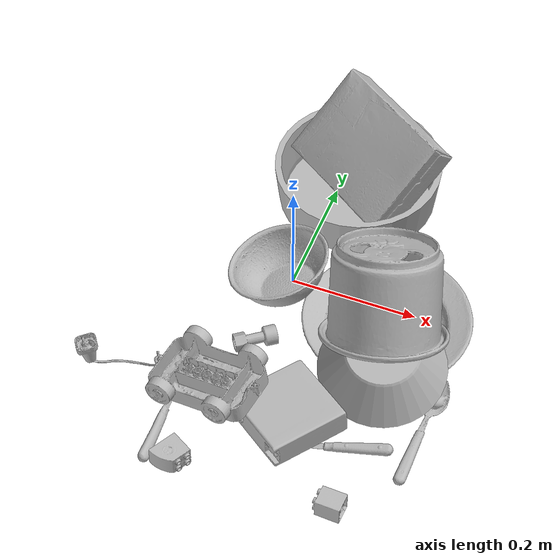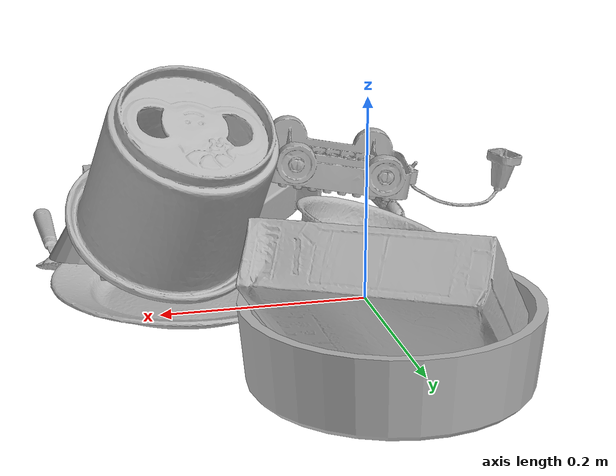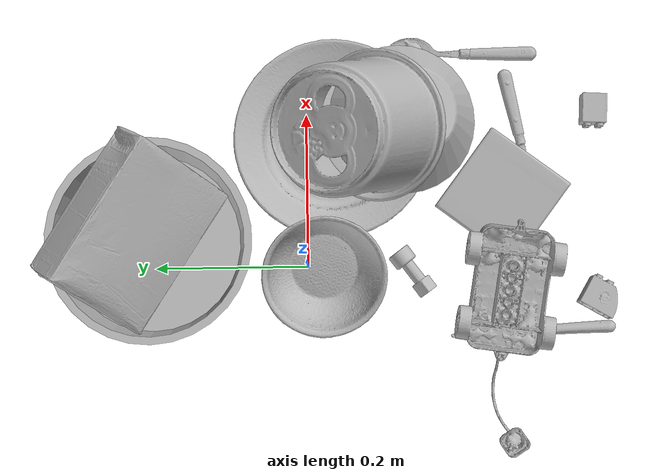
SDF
<sdf version="1.4">
  <world name="default">
    <light name="light1" type="point">
      <pose>0 0 1 0 0 0</pose>
      <diffuse>3 3 3 1</diffuse>
      <specular>3 3 3 1</specular>
    </light>
    <light name="light2" type="point">
      <pose>0 0.5 2 0 0 0</pose>
      <diffuse>1 1 1 1</diffuse>
      <specular>1 1 1 1</specular>
    </light>
    <light name="light3" type="point">
      <pose>0 0.5 2 0 0 0</pose>
      <diffuse>3 3 3 1</diffuse>
      <specular>3 3 3 1</specular>
    </light>
    <scene>
      <ambient>0.7 0.7 0.7</ambient>
    </scene>
    <model name="plate1">
      <link name="link_plate1">
        <collision name="default">
          <geometry>
            <mesh>
              <uri>model://plate/collision_meshes/collision.obj</uri>
              <scale>1.0 1.0 1.0</scale>
            </mesh>
          </geometry>
          <surface>
            <friction>
              <ode>
                <mu>0.5</mu>
                <mu2>0.5</mu2>
              </ode>
            </friction>
          <contact>
        <ode>
            <max_vel>0</max_vel>
            <min_depth>0.0001</min_depth>
            <kp>1e8</kp>
        </ode>
    </contact></surface>
        </collision>
        <visual name="default">
          <geometry>
            <mesh>
              <uri>model://plate/visual_meshes/visual.dae</uri>
              <scale>1.0 1.0 1.0</scale>
            </mesh>
          </geometry>
        </visual>
        <inertial>
          <mass>0.2518167495727539</mass>
          <pose>-0.000604460306931287 0.0002782583760563284 -0.001056198962032795 0.0022187362427659595 -0.003225514577586686 0.4526257716004426</pose>
          <inertia>
            <ixx>0.0011780038</ixx>
            <iyy>0.001166737</iyy>
            <izz>0.0023039998</izz>
            <ixy>0</ixy>
            <ixz>0</ixz>
            <iyz>0</iyz>
          </inertia>
        </inertial>
      </link>
      <pose>0.16642174124717712 -0.03494030609726906 0.01373322680592537 -8.700504679881199e-06 -1.4354868367372241e-05 1.6067159024891842</pose>
    </model>
    <model name="plate2">
      <link name="link_plate2">
        <collision name="default">
          <geometry>
            <mesh>
              <uri>model://pan_tefal/collision_meshes/collision.obj</uri>
              <scale>1.0 1.0 1.0</scale>
            </mesh>
          </geometry>
          <surface>
            <friction>
              <ode>
                <mu>0.5</mu>
                <mu2>0.5</mu2>
              </ode>
            </friction>
          <contact>
        <ode>
            <max_vel>0</max_vel>
            <min_depth>0.0001</min_depth>
            <kp>1e8</kp>
        </ode>
    </contact></surface>
        </collision>
        <visual name="default">
          <geometry>
            <mesh>
              <uri>model://pan_tefal/visual_meshes/visual.dae</uri>
              <scale>1.0 1.0 1.0</scale>
            </mesh>
          </geometry>
        </visual>
        <inertial>
          <mass>1.062379002571106</mass>
          <pose>-0.00018001841090153903 3.2791107514640316e-05 -0.008514937944710255 0.0008190335190592257 -0.00033013878845789875 -0.3318630487039029</pose>
          <inertia>
            <ixx>0.0073335525</ixx>
            <iyy>0.007380832</iyy>
            <izz>0.013499655</izz>
            <ixy>0</ixy>
            <ixz>0</ixz>
            <iyz>0</iyz>
          </inertia>
        </inertial>
      </link>
      <pose>0.03328857570886612 0.2027512490749359 0.038050033152103424 -3.942902992975135e-07 -1.5390935558318264e-06 1.2748417235315963</pose>
    </model>
    <model name="bowl1">
      <link name="link_bowl1">
        <collision name="default">
          <geometry>
            <mesh>
              <uri>model://bowl/collision_meshes/collision.obj</uri>
              <scale>1.0 1.0 1.0</scale>
            </mesh>
          </geometry>
          <surface>
            <friction>
              <ode>
                <mu>0.5</mu>
                <mu2>0.5</mu2>
              </ode>
            </friction>
          <contact>
        <ode>
            <max_vel>0</max_vel>
            <min_depth>0.0001</min_depth>
            <kp>1e8</kp>
        </ode>
    </contact></surface>
        </collision>
        <visual name="default">
          <geometry>
            <mesh>
              <uri>model://bowl/visual_meshes/visual.dae</uri>
              <scale>1.0 1.0 1.0</scale>
            </mesh>
          </geometry>
        </visual>
        <inertial>
          <mass>0.06917417049407959</mass>
          <pose>0.00020445069822017103 -0.0010302119189873338 -0.0008042645640671253 -0.015764106225313407 0.014546789960746879 0.7140402093907182</pose>
          <inertia>
            <ixx>0.00015889853</ixx>
            <iyy>0.00015534814</iyy>
            <izz>0.000267322</izz>
            <ixy>0</ixy>
            <ixz>0</ixz>
            <iyz>0</iyz>
          </inertia>
        </inertial>
      </link>
      <pose>-0.008952265605330467 -0.020870542153716087 0.03983753174543381 0.3149519150720642 -0.0037246927914251237 -1.5479811700703667</pose>
    </model>
    <model name="bowl2">
      <link name="link_bowl2">
        <collision name="default">
          <geometry>
            <mesh>
              <uri>model://bowl_a/collision_meshes/collision.obj</uri>
              <scale>1.0 1.0 1.0</scale>
            </mesh>
          </geometry>
          <surface>
            <friction>
              <ode>
                <mu>0.5</mu>
                <mu2>0.5</mu2>
              </ode>
            </friction>
          <contact>
        <ode>
            <max_vel>0</max_vel>
            <min_depth>0.0001</min_depth>
            <kp>1e8</kp>
        </ode>
    </contact></surface>
        </collision>
        <visual name="default">
          <geometry>
            <mesh>
              <uri>model://bowl_a/visual_meshes/visual.dae</uri>
              <scale>1.0 1.0 1.0</scale>
            </mesh>
          </geometry>
        </visual>
        <inertial>
          <mass>0.33581992983818054</mass>
          <pose>0.00027867587050423026 4.7312365495599806e-05 -0.0013765293406322598 -0.0009805275277335347 -0.0010938264345752996 -0.19124334191203107</pose>
          <inertia>
            <ixx>0.00095609494</ixx>
            <iyy>0.0009619646</iyy>
            <izz>0.0017004515</izz>
            <ixy>0</ixy>
            <ixz>0</ixz>
            <iyz>0</iyz>
          </inertia>
        </inertial>
      </link>
      <pose>0.1921788603067398 -0.13200923800468445 0.05435391142964363 3.0708712980743247 -0.2067669113320824 2.1563401763166143</pose>
    </model>
    <model name="silverware1">
      <link name="link_silverware1">
        <collision name="default">
          <geometry>
            <mesh>
              <uri>model://spoon/collision_meshes/collision.obj</uri>
              <scale>1.0 1.0 1.0</scale>
            </mesh>
          </geometry>
          <surface>
            <friction>
              <ode>
                <mu>0.5</mu>
                <mu2>0.5</mu2>
              </ode>
            </friction>
          <contact>
        <ode>
            <max_vel>0</max_vel>
            <min_depth>0.0001</min_depth>
            <kp>1e8</kp>
        </ode>
    </contact></surface>
        </collision>
        <visual name="default">
          <geometry>
            <mesh>
              <uri>model://spoon/visual_meshes/visual.dae</uri>
              <scale>1.0 1.0 1.0</scale>
            </mesh>
          </geometry>
        </visual>
        <inertial>
          <mass>0.02635110728442669</mass>
          <pose>-0.005526317283511162 -0.0016034177970141172 -0.0007271651993505657 0.03521639754710896 -0.03906583271405073 0.0061506130160543454</pose>
          <inertia>
            <ixx>1.4656912e-06</ixx>
            <iyy>0.0001002651</iyy>
            <izz>0.00010098792</izz>
            <ixy>0</ixy>
            <ixz>0</ixz>
            <iyz>0</iyz>
          </inertia>
        </inertial>
      </link>
      <pose>0.2760334312915802 -0.20504701137542725 0.008384497836232185 0.0030140016905797515 0.026866889518752633 1.5528835121028663</pose>
    </model>
    <model name="box1">
      <link name="link_box1">
        <collision name="default">
          <geometry>
            <mesh>
              <uri>model://cracker_box/collision_meshes/collision.obj</uri>
              <scale>1.0 1.0 1.0</scale>
            </mesh>
          </geometry>
          <surface>
            <friction>
              <ode>
                <mu>0.5</mu>
                <mu2>0.5</mu2>
              </ode>
            </friction>
          <contact>
        <ode>
            <max_vel>0</max_vel>
            <min_depth>0.0001</min_depth>
            <kp>1e8</kp>
        </ode>
    </contact></surface>
        </collision>
        <visual name="default">
          <geometry>
            <mesh>
              <uri>model://cracker_box/visual_meshes/visual.dae</uri>
              <scale>1.0 1.0 1.0</scale>
            </mesh>
          </geometry>
        </visual>
        <inertial>
          <mass>1.9942995309829712</mass>
          <pose>0.0009464178583584726 0.00025434247800149024 -0.0017029533628374338 -0.00031620747948387436 -0.011106490532043566 0.0025467943028284904</pose>
          <inertia>
            <ixx>0.005072607</ixx>
            <iyy>0.008375872</iyy>
            <izz>0.011953138</izz>
            <ixy>0</ixy>
            <ixz>0</ixz>
            <iyz>0</iyz>
          </inertia>
        </inertial>
      </link>
      <pose>0.04577898606657982 0.22561398148536682 0.08528176695108414 2.4096700377410922 -0.035988949844555196 2.5806564636063944</pose>
    </model>
    <model name="box2">
      <link name="link_box2">
        <collision name="default">
          <geometry>
            <mesh>
              <uri>model://pudding_box/collision_meshes/collision.obj</uri>
              <scale>1.0 1.0 1.0</scale>
            </mesh>
          </geometry>
          <surface>
            <friction>
              <ode>
                <mu>0.5</mu>
                <mu2>0.5</mu2>
              </ode>
            </friction>
          <contact>
        <ode>
            <max_vel>0</max_vel>
            <min_depth>0.0001</min_depth>
            <kp>1e8</kp>
        </ode>
    </contact></surface>
        </collision>
        <visual name="default">
          <geometry>
            <mesh>
              <uri>model://pudding_box/visual_meshes/visual.dae</uri>
              <scale>1.0 1.0 1.0</scale>
            </mesh>
          </geometry>
        </visual>
        <inertial>
          <mass>0.5201411247253418</mass>
          <pose>0.0004894821904599667 0.0008067885646596551 -0.0005188828217796981 0.00521310178321913 -0.006603799649863257 0.020079825157321304</pose>
          <inertia>
            <ixx>0.0005879929</ixx>
            <iyy>0.00039560578</iyy>
            <izz>0.00086832506</izz>
            <ixy>0</ixy>
            <ixz>0</ixz>
            <iyz>0</iyz>
          </inertia>
        </inertial>
      </link>
      <pose>0.18772834539413452 -0.10834913700819016 0.03577239066362381 3.049340554351922 0.24281069716045053 1.5369418659983611</pose>
    </model>
    <model name="cup1">
      <link name="link_cup1">
        <collision name="default">
          <geometry>
            <mesh>
              <uri>model://i_cups/collision_meshes/collision.obj</uri>
              <scale>2.0 2.0 2.0</scale>
            </mesh>
          </geometry>
          <surface>
            <friction>
              <ode>
                <mu>0.5</mu>
                <mu2>0.5</mu2>
              </ode>
            </friction>
          <contact>
        <ode>
            <max_vel>0</max_vel>
            <min_depth>0.0001</min_depth>
            <kp>1e8</kp>
        </ode>
    </contact></surface>
        </collision>
        <visual name="default">
          <geometry>
            <mesh>
              <uri>model://i_cups/visual_meshes/visual.dae</uri>
              <scale>2.0 2.0 2.0</scale>
            </mesh>
          </geometry>
        </visual>
        <inertial>
          <mass>0.946932315826416</mass>
          <pose>0.00022480011102743447 0.0003359477559570223 -0.0017158038681373 -0.02898277199923076 -0.03987335280003036 -0.34591530516328983</pose>
          <inertia>
            <ixx>0.005244167</ixx>
            <iyy>0.0052903723</iyy>
            <izz>0.005861205</izz>
            <ixy>0</ixy>
            <ixz>0</ixz>
            <iyz>0</iyz>
          </inertia>
        </inertial>
      </link>
      <pose>0.16842129826545715 -0.05750756710767746 0.11649688333272934 2.62301395356687 -0.014110961470281213 0.28625215136912524</pose>
    </model>
    <model name="silverware2">
      <link name="link_silverware2">
        <collision name="default">
          <geometry>
            <mesh>
              <uri>model://fork/collision_meshes/collision.obj</uri>
              <scale>1.0 1.0 1.0</scale>
            </mesh>
          </geometry>
          <surface>
            <friction>
              <ode>
                <mu>0.5</mu>
                <mu2>0.5</mu2>
              </ode>
            </friction>
          <contact>
        <ode>
            <max_vel>0</max_vel>
            <min_depth>0.0001</min_depth>
            <kp>1e8</kp>
        </ode>
    </contact></surface>
        </collision>
        <visual name="default">
          <geometry>
            <mesh>
              <uri>model://fork/visual_meshes/visual.dae</uri>
              <scale>1.0 1.0 1.0</scale>
            </mesh>
          </geometry>
        </visual>
        <inertial>
          <mass>0.03207480534911156</mass>
          <pose>-0.02957005240023136 0.00046588238910771906 0.0003218861820641905 -0.013551414501779666 -0.010977842682601763 0.014453906756127453</pose>
          <inertia>
            <ixx>1.1244033e-06</ixx>
            <iyy>8.373807e-05</iyy>
            <izz>8.424099e-05</izz>
            <ixy>0</ixy>
            <ixz>0</ixz>
            <iyz>0</iyz>
          </inertia>
        </inertial>
      </link>
      <pose>0.15843287110328674 -0.2806558907032013 0.009439091198146343 0.040890152191544196 0.11700969911213377 -2.9102982214529907</pose>
    </model>
    <model name="silverware3">
      <link name="link_silverware3">
        <collision name="default">
          <geometry>
            <mesh>
              <uri>model://knife/collision_meshes/collision.obj</uri>
              <scale>1.0 1.0 1.0</scale>
            </mesh>
          </geometry>
          <surface>
            <friction>
              <ode>
                <mu>0.5</mu>
                <mu2>0.5</mu2>
              </ode>
            </friction>
          <contact>
        <ode>
            <max_vel>0</max_vel>
            <min_depth>0.0001</min_depth>
            <kp>1e8</kp>
        </ode>
    </contact></surface>
        </collision>
        <visual name="default">
          <geometry>
            <mesh>
              <uri>model://knife/visual_meshes/visual.dae</uri>
              <scale>1.0 1.0 1.0</scale>
            </mesh>
          </geometry>
        </visual>
        <inertial>
          <mass>0.02260335348546505</mass>
          <pose>-0.023785259574651718 0.0015275129117071629 5.062025593360886e-05 0.073049853839256 0.017248417767033373 -0.0074098225522862896</pose>
          <inertia>
            <ixx>6.41575e-07</ixx>
            <iyy>8.6838445e-05</iyy>
            <izz>8.704508e-05</izz>
            <ixy>0</ixy>
            <ixz>0</ixz>
            <iyz>0</iyz>
          </inertia>
        </inertial>
      </link>
      <pose>-0.08892637491226196 -0.29264387488365173 0.009939795359969139 -2.1810506134530154 0.002426017144527111 1.6242865005913354</pose>
    </model>
    <model name="toy1">
      <link name="link_toy1">
        <collision name="default">
          <geometry>
            <mesh>
              <uri>model://nine_hole_peg_test/collision_meshes/collision.obj</uri>
              <scale>1.0 1.0 1.0</scale>
            </mesh>
          </geometry>
          <surface>
            <friction>
              <ode>
                <mu>0.5</mu>
                <mu2>0.5</mu2>
              </ode>
            </friction>
          <contact>
        <ode>
            <max_vel>0</max_vel>
            <min_depth>0.0001</min_depth>
            <kp>1e8</kp>
        </ode>
    </contact></surface>
        </collision>
        <visual name="default">
          <geometry>
            <mesh>
              <uri>model://nine_hole_peg_test/visual_meshes/visual.dae</uri>
              <scale>1.0 1.0 1.0</scale>
            </mesh>
          </geometry>
        </visual>
        <inertial>
          <mass>0.3368244469165802</mass>
          <pose>-0.0046173869632184505 -0.009647615253925323 2.6460689696250483e-05 -0.001466679946039042 0.000719417968587533 -0.6342416610336568</pose>
          <inertia>
            <ixx>0.00052668044</ixx>
            <iyy>0.000491756</iyy>
            <izz>0.00092289934</izz>
            <ixy>0</ixy>
            <ixz>0</ixz>
            <iyz>0</iyz>
          </inertia>
        </inertial>
      </link>
      <pose>0.0772726982831955 -0.25182127952575684 0.024917198345065117 -3.0562551968606293 -0.0006772452468747536 -2.215252191318578</pose>
    </model>
    <model name="toy2">
      <link name="link_toy2">
        <collision name="default">
          <geometry>
            <mesh>
              <uri>model://c_toy_airplane/collision_meshes/collision.obj</uri>
              <scale>1.0 1.0 1.0</scale>
            </mesh>
          </geometry>
          <surface>
            <friction>
              <ode>
                <mu>0.5</mu>
                <mu2>0.5</mu2>
              </ode>
            </friction>
          <contact>
        <ode>
            <max_vel>0</max_vel>
            <min_depth>0.0001</min_depth>
            <kp>1e8</kp>
        </ode>
    </contact></surface>
        </collision>
        <visual name="default">
          <geometry>
            <mesh>
              <uri>model://c_toy_airplane/visual_meshes/visual.dae</uri>
              <scale>1.0 1.0 1.0</scale>
            </mesh>
          </geometry>
        </visual>
        <inertial>
          <mass>0.025849465280771255</mass>
          <pose>-0.000230242803809233 -4.4294804979472246e-07 -0.006080531980842352 -0.006193997552816779 -0.016797268968147806 0.7655666586292194</pose>
          <inertia>
            <ixx>1.1869546e-05</ixx>
            <iyy>1.1836047e-05</iyy>
            <izz>2.7867347e-06</izz>
            <ixy>0</ixy>
            <ixz>0</ixz>
            <iyz>0</iyz>
          </inertia>
        </inertial>
      </link>
      <pose>-0.008874176070094109 -0.13690702617168427 0.015062765218317509 1.6347035136195416 1.2760164435922507 -0.865538760983143</pose>
    </model>
    <model name="toy3">
      <link name="link_toy3">
        <collision name="default">
          <geometry>
            <mesh>
              <uri>model://g_lego_duplo/collision_meshes/collision.obj</uri>
              <scale>1.0 1.0 1.0</scale>
            </mesh>
          </geometry>
          <surface>
            <friction>
              <ode>
                <mu>0.5</mu>
                <mu2>0.5</mu2>
              </ode>
            </friction>
          <contact>
        <ode>
            <max_vel>0</max_vel>
            <min_depth>0.0001</min_depth>
            <kp>1e8</kp>
        </ode>
    </contact></surface>
        </collision>
        <visual name="default">
          <geometry>
            <mesh>
              <uri>model://g_lego_duplo/visual_meshes/visual.dae</uri>
              <scale>1.0 1.0 1.0</scale>
            </mesh>
          </geometry>
        </visual>
        <inertial>
          <mass>0.44857048988342285</mass>
          <pose>-0.05004768818616867 0.0017554624937474728 0.0038806761149317026 0.010962989380518968 0.03810827633819491 -0.09653029550410545</pose>
          <inertia>
            <ixx>0.0006499838</ixx>
            <iyy>0.00196511</iyy>
            <izz>0.0024584262</izz>
            <ixy>0</ixy>
            <ixz>0</ixz>
            <iyz>0</iyz>
          </inertia>
        </inertial>
      </link>
      <pose>-0.09470020234584808 -0.2535509169101715 0.04733821749687195 3.132379408165892 0.17318318681582878 2.99725235856696</pose>
    </model>
    <model name="toy4">
      <link name="link_toy4">
        <collision name="default">
          <geometry>
            <mesh>
              <uri>model://b_lego_duplo/collision_meshes/collision.obj</uri>
              <scale>1.0 1.0 1.0</scale>
            </mesh>
          </geometry>
          <surface>
            <friction>
              <ode>
                <mu>0.5</mu>
                <mu2>0.5</mu2>
              </ode>
            </friction>
          <contact>
        <ode>
            <max_vel>0</max_vel>
            <min_depth>0.0001</min_depth>
            <kp>1e8</kp>
        </ode>
    </contact></surface>
        </collision>
        <visual name="default">
          <geometry>
            <mesh>
              <uri>model://b_lego_duplo/visual_meshes/visual.dae</uri>
              <scale>1.0 1.0 1.0</scale>
            </mesh>
          </geometry>
        </visual>
        <inertial>
          <mass>0.028142115101218224</mass>
          <pose>-0.00011053047637687996 -9.15253895072965e-06 0.0019294291269034147 -0.03749502345465157 -0.02635389323626884 0.4519044936865358</pose>
          <inertia>
            <ixx>5.759495e-06</ixx>
            <iyy>5.798213e-06</iyy>
            <izz>5.1315224e-06</izz>
            <ixy>0</ixy>
            <ixz>0</ixz>
            <iyz>0</iyz>
          </inertia>
        </inertial>
      </link>
      <pose>0.19871078431606293 -0.37576696276664734 0.016180505976080894 0.042571257130434186 -1.5623973996673661 -0.08714222661856501</pose>
    </model>
    <model name="toy5">
      <link name="link_toy5">
        <collision name="default">
          <geometry>
            <mesh>
              <uri>model://d_lego_duplo/collision_meshes/collision.obj</uri>
              <scale>1.0 1.0 1.0</scale>
            </mesh>
          </geometry>
          <surface>
            <friction>
              <ode>
                <mu>0.5</mu>
                <mu2>0.5</mu2>
              </ode>
            </friction>
          <contact>
        <ode>
            <max_vel>0</max_vel>
            <min_depth>0.0001</min_depth>
            <kp>1e8</kp>
        </ode>
    </contact></surface>
        </collision>
        <visual name="default">
          <geometry>
            <mesh>
              <uri>model://d_lego_duplo/visual_meshes/visual.dae</uri>
              <scale>1.0 1.0 1.0</scale>
            </mesh>
          </geometry>
        </visual>
        <inertial>
          <mass>0.03456217050552368</mass>
          <pose>0.00283056334592402 0.00016366186900995672 0.0008589798817411065 0.08010865489808279 -0.3835519084219494 0.001029683970252444</pose>
          <inertia>
            <ixx>6.6907255e-06</ixx>
            <iyy>9.495956e-06</iyy>
            <izz>9.1575175e-06</izz>
            <ixy>0</ixy>
            <ixz>0</ixz>
            <iyz>0</iyz>
          </inertia>
        </inertial>
      </link>
      <pose>-0.04397531971335411 -0.38201767206192017 0.016234830021858215 1.5922667676571194 -0.01536483343592703 1.0520007089868462</pose>
    </model>
  <physics type="ode">
      <max_contacts>50</max_contacts>
      <ode>
        <solver>
          <type>quick</type>
          <iters>75</iters>
        </solver>
        <constraints>
          <contact_max_correcting_vel>0</contact_max_correcting_vel>
          <contact_surface_layer>0</contact_surface_layer>
        </constraints>
      </ode>
    </physics></world>
</sdf>
